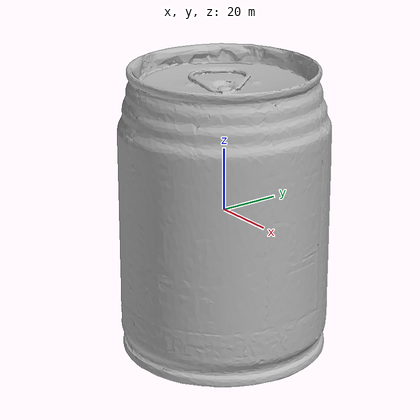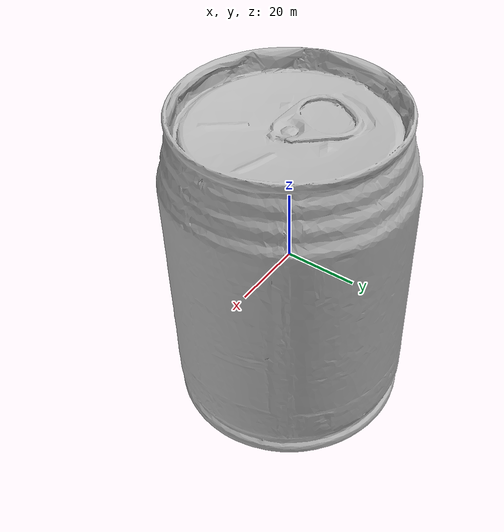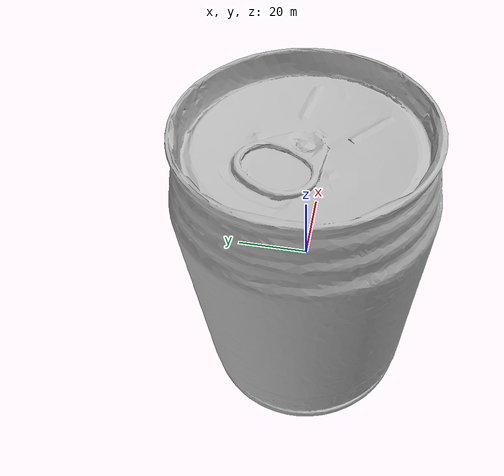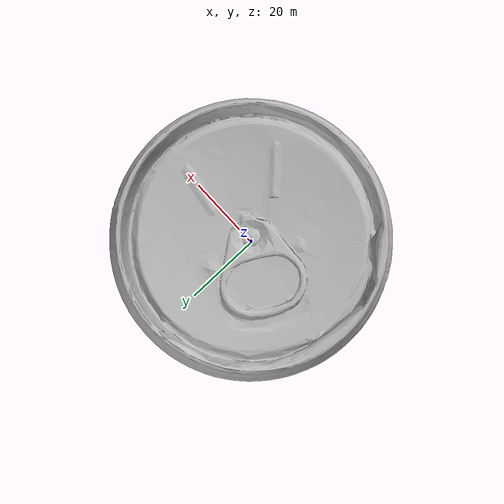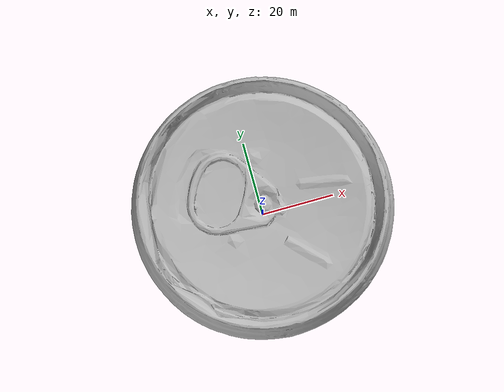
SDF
<sdf version="1.4">
 <world name="default">
  <light name="light1" type="point">
   <pose>0 0 1 0 0 0</pose>
   <diffuse>3 3 3 1</diffuse>
   <specular>3 3 3 1</specular>
  </light>
  <light name="light2" type="point">
   <pose>0 0.5 2 0 0 0</pose>
   <diffuse>1 1 1 1</diffuse>
   <specular>1 1 1 1</specular>
  </light>
  <light name="light3" type="point">
   <pose>0 0.5 2 0 0 0</pose>
   <diffuse>3 3 3 1</diffuse>
   <specular>3 3 3 1</specular>
  </light>
  <scene><ambient>0.7 0.7 0.7</ambient></scene>
  <model name="box1">
   <link name="link_box1">
    <collision name="default">
     <geometry>
      <mesh><uri>model://wooden_puzzle1/collision_meshes/collision.obj</uri><scale>1.0 1.0 1.0</scale></mesh>
     </geometry>
     <surface>
      <friction><ode><mu>0.5</mu><mu2>0.5</mu2></ode></friction>
      <contact><ode><max_vel>0</max_vel><min_depth>0.0001</min_depth><kp>1e8</kp></ode></contact>
     </surface>
    </collision>
    <visual name="default">
     <geometry>
      <mesh><uri>model://wooden_puzzle1/visual_meshes/visual.dae</uri><scale>1.0 1.0 1.0</scale></mesh>
     </geometry>
    </visual>
    <inertial>
     <mass>0.020629532635211945</mass>
     <pose>-0.0001735068071866408 7.972260937094688e-05 -9.191555000143126e-05 -0.07784798349428995 -0.2636160818751574 -0.552872324185161</pose>
     <inertia>
      <ixx>3.8922285e-06</ixx>
      <iyy>3.817302e-06</iyy>
      <izz>3.8628423e-06</izz>
      <ixy>0</ixy>
      <ixz>0</ixz>
      <iyz>0</iyz>
     </inertia>
    </inertial>
   </link>
   <pose>0.08453290909528732 0.1744704693555832 0.016802014783024788 0.010511084871516297 -0.009457091776952094 -1.2643381038356807</pose>
  </model>
  <model name="box3">
   <link name="link_box3">
    <collision name="default">
     <geometry>
      <mesh><uri>model://wooden_puzzle2/collision_meshes/collision.obj</uri><scale>1.0 1.0 1.0</scale></mesh>
     </geometry>
     <surface>
      <friction><ode><mu>0.5</mu><mu2>0.5</mu2></ode></friction>
      <contact><ode><max_vel>0</max_vel><min_depth>0.0001</min_depth><kp>1e8</kp></ode></contact>
     </surface>
    </collision>
    <visual name="default">
     <geometry>
      <mesh><uri>model://wooden_puzzle2/visual_meshes/visual.dae</uri><scale>1.0 1.0 1.0</scale></mesh>
     </geometry>
    </visual>
    <inertial>
     <mass>0.05583015829324722</mass>
     <pose>2.7402536943554878e-05 4.997663199901581e-05 6.587122334167361e-05 -0.19203199902598803 0.6112853789707493 -0.6338693450254121</pose>
     <inertia>
      <ixx>1.0378231e-05</ixx>
      <iyy>1.06642165e-05</iyy>
      <izz>1.0512509e-05</izz>
      <ixy>0</ixy>
      <ixz>0</ixz>
      <iyz>0</iyz>
     </inertia>
    </inertial>
   </link>
   <pose>0.09055555611848831 0.2310003936290741 0.01691773347556591 0.020848727562886398 0.0007211489591665109 -0.3739642393214211</pose>
  </model>
  <model name="can1">
   <link name="link_can1">
    <collision name="default">
     <geometry>
      <mesh><uri>model://pepsi/collision_meshes/collision.obj</uri><scale>1.0 1.0 1.0</scale></mesh>
     </geometry>
     <surface>
      <friction><ode><mu>0.5</mu><mu2>0.5</mu2></ode></friction>
      <contact><ode><max_vel>0</max_vel><min_depth>0.0001</min_depth><kp>1e8</kp></ode></contact>
     </surface>
    </collision>
    <visual name="default">
     <geometry><mesh><uri>model://pepsi/visual_meshes/visual.dae</uri><scale>1.0 1.0 1.0</scale></mesh></geometry>
    </visual>
    <inertial>
     <mass>0.49348899722099304</mass>
     <pose>-7.5590331107378e-05 2.9931279641459696e-05 -0.0003384356386959553 -0.0010677622415870868 -0.0021735774955872703 0.5673701275352521</pose>
     <inertia>
      <ixx>0.0009831247</ixx>
      <iyy>0.0009824084</iyy>
      <izz>0.00020924417</izz>
      <ixy>0</ixy>
      <ixz>0</ixz>
      <iyz>0</iyz>
     </inertia>
    </inertial>
   </link>
   <pose>-0.07048018276691437 -0.29787716269493103 0.07449635118246078 -1.891336650565408e-05 2.2976578307785446e-06 0.21906104906946808</pose>
  </model>
  <model name="can2">
   <link name="link_can2">
    <collision name="default">
     <geometry>
      <mesh><uri>model://redbull/collision_meshes/collision.obj</uri><scale>1.0 1.0 1.0</scale></mesh>
     </geometry>
     <surface>
      <friction><ode><mu>0.5</mu><mu2>0.5</mu2></ode></friction>
      <contact><ode><max_vel>0</max_vel><min_depth>0.0001</min_depth><kp>1e8</kp></ode></contact>
     </surface>
    </collision>
    <visual name="default">
     <geometry>
      <mesh><uri>model://redbull/visual_meshes/visual.dae</uri><scale>1.0 1.0 1.0</scale></mesh>
     </geometry>
    </visual>
    <inertial>
     <mass>0.3443465232849121</mass>
     <pose>-2.2127078409539536e-05 -0.00012659528874792159 -0.0006860987632535398 0.0011367237692686564 -0.010800964902263904 0.5859097418646089</pose>
     <inertia>
      <ixx>0.0003237599</ixx>
      <iyy>0.00032403314</iyy>
      <izz>0.00019212745</izz>
      <ixy>0</ixy>
      <ixz>0</ixz>
      <iyz>0</iyz>
     </inertia>
    </inertial>
   </link>
   <pose>-0.028669925406575203 -0.10175421088933945 0.04638563096523285 -0.010489877447316472 0.007260535091907902 -1.6616874518425975</pose>
  </model>
  <physics type="ode">
   <max_contacts>50</max_contacts>
   <ode>
    <solver><type>quick</type><iters>75</iters></solver>
    <constraints>
     <contact_max_correcting_vel>0</contact_max_correcting_vel>
     <contact_surface_layer>0</contact_surface_layer>
    </constraints>
   </ode>
  </physics>
 </world>
</sdf>
